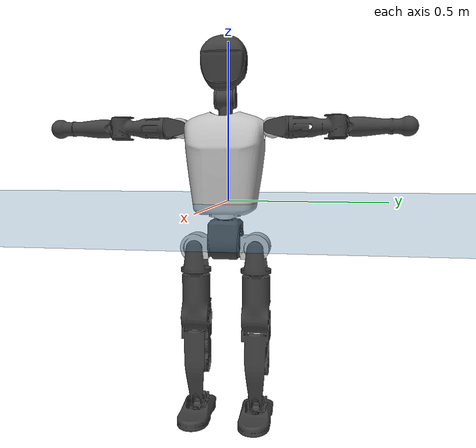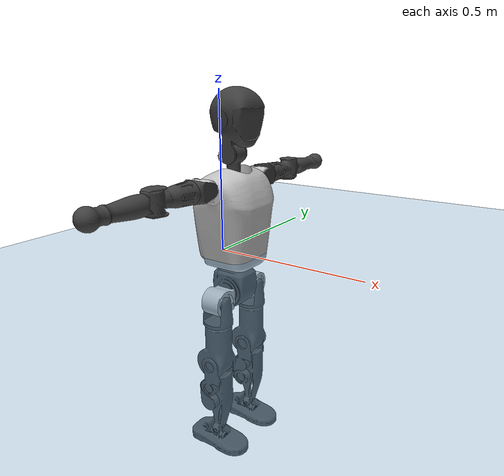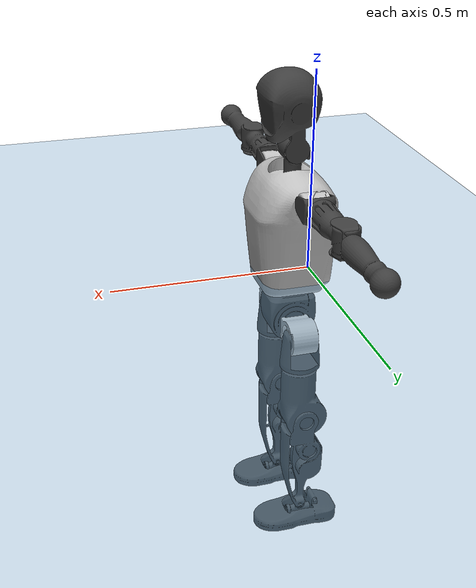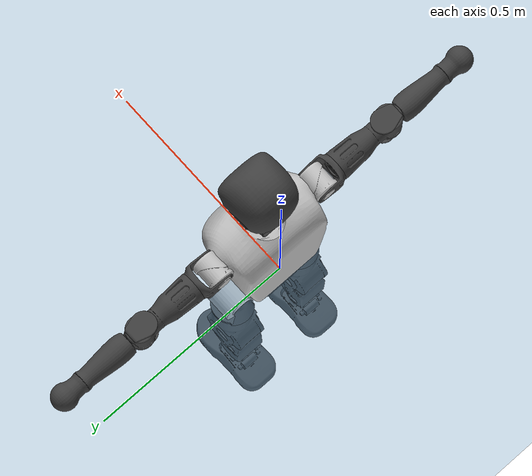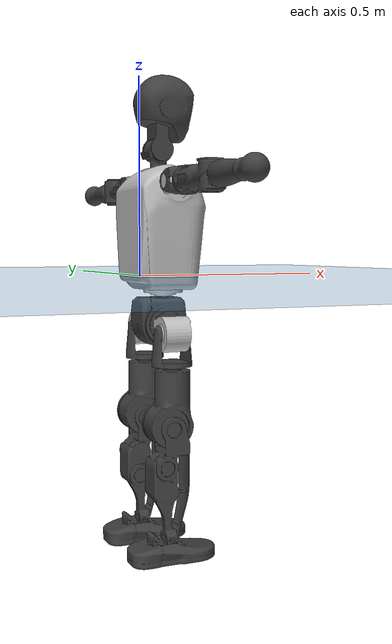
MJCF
<mujoco model="T1">
  <compiler angle="radian" assetdir="assets" balanceinertia="true" inertiafromgeom="false"/>

  <option timestep="0.005" density="1.2" viscosity="2e-05"/>

  <size nkey="1"/>

  <visual>
    <quality shadowsize="8192"/>
    <map shadowclip="0.5"/>
  </visual>

  <default>
    <default class="/">
      <joint armature="0.01" damping="0.01" frictionloss="0.1"/>
      <geom contype="0" conaffinity="0" group="1" solref="-1000 -80"/>
      <site size="0.01 0.005 0.005" group="5"/>
      <general forcelimited="true" biastype="affine" gainprm="25" biasprm="0 -25 -0.6"/>
      <default class="t1">
        <geom rgba="0.25 0.25 0.25 1"/>
        <default class="visual">
          <geom type="mesh" group="2"/>
        </default>
        <default class="collision">
          <geom group="3"/>
        </default>
        <default class="foot">
          <geom size="0.1115 0.05 0.015" type="box" condim="6" group="4" priority="1" solimp="0.015 1 0.015"/>
        </default>
        <default class="reward_collision_sphere">
          <geom group="5" rgba="1 0 0 1"/>
        </default>
      </default>
    </default>
  </default>

  <asset>
    <texture type="skybox" colorspace="auto" name="//unnamed_texture_0" builtin="gradient" rgb1="0.95 0.95 0.95" rgb2="0.95 0.95 0.95" width="100" height="600"/>
    <texture type="2d" colorspace="auto" name="texplane" builtin="checker" rgb1="0.345 0.575 0.748" rgb2="0.345 0.575 0.748" markrgb="1 1 1" width="512" height="512"/>
    <material name="MatPlane" class="/" texture="texplane" texuniform="true" texrepeat="2 2" specular="0.9"/>
    <mesh name="Trunk" class="/" file="Trunk.stl"/>
    <mesh name="H1" class="/" file="H1.stl"/>
    <mesh name="H2" class="/" file="H2.stl"/>
    <mesh name="AL1" class="/" file="AL1.stl"/>
    <mesh name="AL2" class="/" file="AL2.stl"/>
    <mesh name="AL3" class="/" file="AL3.stl"/>
    <mesh name="left_hand_link" class="/" file="left_hand_link.stl"/>
    <mesh name="AR1" class="/" file="AR1.stl"/>
    <mesh name="AR2" class="/" file="AR2.stl"/>
    <mesh name="AR3" class="/" file="AR3.stl"/>
    <mesh name="right_hand_link" class="/" file="right_hand_link.stl"/>
    <mesh name="Waist" class="/" file="Waist.stl"/>
    <mesh name="Hip_Pitch_Left" class="/" file="Hip_Pitch_Left.stl"/>
    <mesh name="Hip_Roll_Left" class="/" file="Hip_Roll_Left.stl"/>
    <mesh name="Hip_Yaw_Left" class="/" file="Hip_Yaw_Left.stl"/>
    <mesh name="Shank_Left" class="/" file="Shank_Left.stl"/>
    <mesh name="Ankle_Cross_Left" class="/" file="Ankle_Cross_Left.stl"/>
    <mesh name="left_foot_link" class="/" file="left_foot_link.stl"/>
    <mesh name="Hip_Pitch_Right" class="/" file="Hip_Pitch_Right.stl"/>
    <mesh name="Hip_Roll_Right" class="/" file="Hip_Roll_Right.stl"/>
    <mesh name="Hip_Yaw_Right" class="/" file="Hip_Yaw_Right.stl"/>
    <mesh name="Shank_Right" class="/" file="Shank_Right.stl"/>
    <mesh name="Ankle_Cross_Right" class="/" file="Ankle_Cross_Right.stl"/>
    <mesh name="right_foot_link" class="/" file="right_foot_link.stl"/>
  </asset>

  <worldbody>
    <geom name="floor" class="/" size="100 100 0.125" type="plane" group="0" material="MatPlane"/>
    <light name="toplight_shadow" class="/" pos="0 0 5" dir="0.0990148 0.0990148 -0.990148" type="directional" ambient="0.04 0.04 0.04" diffuse="0.55 0.55 0.55" specular="0.12 0.12 0.12"/>
    <light name="toplight_fill" class="/" pos="0 0 5" dir="0.0990148 0.0990148 -0.990148" type="directional" castshadow="false" ambient="0.04 0.04 0.04" diffuse="0.3 0.3 0.3" specular="0.08 0.08 0.08"/>
    <body name="trunk" childclass="t1" pos="0.000862722 -0.000560094 -0.000160894" quat="1 5.76309e-05 0.00035743 -8.54895e-05">
      <inertial pos="0.0435219 -0.000613811 0.10924" quat="0.999968 9.12361e-06 -0.00799334 0.000417584" mass="9.04639" diaginertia="0.0295271 0.0486586 0.0724631"/>
      <joint name="//unnamed_joint_0" type="free" armature="0" damping="0" frictionloss="0"/>
      <geom name="//unnamed_geom_1" class="visual" rgba="0.76 0.76 0.76 1" mesh="Trunk"/>
      <geom name="//unnamed_geom_2" class="collision" size="0.0688064 0.0917418 0.137613" pos="0.0477519 0 0.125702" type="box"/>
      <geom name="//unnamed_geom_3" class="reward_collision_sphere" size="0.105503" pos="0.0477519 0 0.104752"/>
      <geom name="//unnamed_geom_4" class="reward_collision_sphere" size="0.0137613" pos="0.0477519 0.0772542 0"/>
      <geom name="//unnamed_geom_5" class="reward_collision_sphere" size="0.0137613" pos="0.0477519 -0.0772542 0"/>
      <geom name="//unnamed_geom_6" class="reward_collision_sphere" size="0.0137613" pos="0.0477519 0.0972494 0.188553"/>
      <geom name="//unnamed_geom_7" class="reward_collision_sphere" size="0.0137613" pos="0.0477519 -0.0972494 0.188553"/>
      <site name="imu" pos="-0.000799208 0.00153675 -0.000945691" size="0.00917418"/>
      <camera name="track" pos="0 -1.81775 0" quat="0.707107 0.707107 0 0" mode="trackcom"/>
      <camera name="ego_camera" pos="0.0970955 0 0.439957" quat="-0.5 -0.5 0.5 0.5"/>
      <body name="H1" pos="0.0496412 0.000356966 0.254646" quat="1 5.14199e-05 -2.56515e-05 -3.39312e-06">
        <inertial pos="-0.0014914 -0.00233797 0.060008" quat="0.768709 -0.0146008 0.005477 0.639408" mass="0.344814" diaginertia="7.8485e-05 0.000139267 0.000190854"/>
        <joint name="AAHead_yaw" pos="0 0 0" axis="0.000266255 -0.000701226 1" range="-1.5523 1.56845" armature="0.0090899" damping="0.00889851" frictionloss="0.0995574"/>
        <geom name="//unnamed_geom_8" class="visual" mesh="H1"/>
        <body name="H2" pos="-0.00101373 -0.000167331 0.0641648" quat="1 -7.78365e-05 4.10732e-05 -1.19668e-05">
          <inertial pos="0.00566921 0.0011218 0.103587" quat="0.987826 0.110245 -0.0749723 -0.0801583" mass="0.48166" diaginertia="0.000653494 0.0011728 0.00218974"/>
          <joint name="Head_pitch" pos="0 0 0" axis="-0.0021168 -0.999995 -0.0022004" range="-1.22536 0.356908" armature="0.00861808" damping="0.00647196" frictionloss="0.0927047"/>
          <geom name="//unnamed_geom_9" class="visual" mesh="H2"/>
          <geom name="//unnamed_geom_10" class="collision" size="0.0733935" pos="0.00795865 0 0.115227"/>
          <geom name="//unnamed_geom_11" class="reward_collision_sphere" size="0.0825677" pos="0.0159173 0 0.104752"/>
        </body>
      </body>
      <body name="AL1" pos="0.0466042 0.0972745 0.229943" quat="1 1.83612e-05 0.000480746 1.11513e-05">
        <inertial pos="0.000178286 0.0405234 0.0002175" quat="0.500972 0.50213 -0.501764 0.495101" mass="0.409042" diaginertia="0.000437034 0.000795835 0.000372805"/>
        <joint name="Left_Shoulder_Pitch" pos="0 0 0" axis="-0.00245779 0.999995 -0.00177375" stiffness="2.91199e-05" range="-3.30106 1.20234" armature="0.00929319" damping="0.00758687" frictionloss="0.0894536"/>
        <geom name="//unnamed_geom_12" class="visual" rgba="0.76 0.76 0.76 1" mesh="AL1"/>
        <body name="AL2" pos="0.000768467 0.0434563 0.000986192" quat="1 2.80906e-05 -8.40065e-05 5.11999e-05">
          <inertial pos="0.00274679 0.0351837 -0.000162527" quat="0.488314 0.511322 -0.488042 0.511775" mass="0.123643" diaginertia="0.000128426 0.000215617 0.000222354"/>
          <joint name="Left_Shoulder_Roll" pos="0 0 0" axis="-0.999996 -0.0028364 -0.000671165" stiffness="0.000929944" range="-1.55217 1.72536" armature="0.00916942" damping="0.0043728" frictionloss="0.0895814"/>
          <geom name="//unnamed_geom_13" class="visual" mesh="AL2"/>
          <body name="AL3" pos="0.00113711 0.0549477 -0.000219277" quat="1 -3.91381e-06 1.84721e-05 -6.75563e-05">
            <inertial pos="-0.00168953 0.077574 -0.000186351" quat="0.706362 0.707847 -0.00120696 0.00194997" mass="0.78484" diaginertia="0.00406055 0.00783793 0.000784458"/>
            <joint name="Left_Elbow_Pitch" pos="0 0 0" axis="-0.000101984 -1 -1.16072e-05" range="-2.27448 2.26694" armature="0.00945146" damping="0.00944952" frictionloss="0.0900032"/>
            <geom name="//unnamed_geom_14" class="visual" mesh="AL3"/>
            <geom name="//unnamed_geom_15" class="collision" size="0.0275226 0.0688064" pos="0 0.0454437 0" quat="0.707105 0.707108 0 0" type="cylinder"/>
            <geom name="//unnamed_geom_16" class="reward_collision_sphere" size="0.0330271"/>
            <body name="left_hand_link" pos="0.00127398 0.133988 -0.000593664" quat="1 9.91525e-05 6.52189e-05 -0.000387125">
              <inertial pos="0.0001608 0.100175 -6.92677e-05" quat="0.710501 0.703692 -0.000138621 -0.00263594" mass="0.250534" diaginertia="0.00258273 0.0049866 0.000265565"/>
              <joint name="Left_Elbow_Yaw" pos="0 0 0" axis="-0.00197905 0.0049126 0.999986" range="-2.45509 0.0188296" armature="0.00898103" damping="0.0124754" frictionloss="0.0917743"/>
              <geom name="//unnamed_geom_17" class="visual" mesh="left_hand_link"/>
              <geom name="//unnamed_geom_18" class="collision" size="0.0275226 0.0802741" pos="0 0.118154 0" quat="0.707105 0.707108 0 0" type="cylinder"/>
              <geom name="//unnamed_geom_19" class="reward_collision_sphere" size="0.0458709"/>
              <geom name="//unnamed_geom_20" class="reward_collision_sphere" size="0.0321096" pos="0 0.0999761 0"/>
              <geom name="//unnamed_geom_21" class="reward_collision_sphere" size="0.0321096" pos="0 0.195408 0"/>
            </body>
          </body>
        </body>
      </body>
      <body name="AR1" pos="0.0444039 -0.0968396 0.230063" quat="1 3.3304e-05 0.000453177 -1.83091e-05">
        <inertial pos="-0.00133304 -0.0416892 0.00124447" quat="0.502986 0.494444 -0.505247 0.497248" mass="0.413837" diaginertia="0.000441161 0.000798668 0.000373614"/>
        <joint name="Right_Shoulder_Pitch" pos="0 0 0" axis="-0.0010065 -0.999992 0.00379404" range="-1.22479 3.30837" armature="0.00883863" damping="0.00574315" frictionloss="0.0919045"/>
        <geom name="//unnamed_geom_22" class="visual" rgba="0.76 0.76 0.76 1" mesh="AR1"/>
        <body name="AR2" pos="-0.000521144 -0.040937 0.000166682" quat="1 -0.000471002 0.000112391 0.000254105">
          <inertial pos="0.00376192 -0.0346829 0.00127051" quat="0.514059 0.484107 -0.512133 0.488982" mass="0.126796" diaginertia="0.00013118 0.000219382 0.000222727"/>
          <joint name="Right_Shoulder_Roll" pos="0 0 0" axis="-0.999995 -0.00190402 0.00257224" stiffness="0.00355264" range="-1.74133 1.5766" armature="0.00872251" damping="0.00532519" frictionloss="0.0893678"/>
          <geom name="//unnamed_geom_23" class="visual" mesh="AR2"/>
          <body name="AR3" pos="-0.0006504 -0.0556339 0.000480272" quat="1 -4.11997e-05 6.69088e-05 -3.85248e-05">
            <inertial pos="0.00121678 -0.0775496 0.000772038" quat="0.707462 0.706751 0.00015228 0.000704286" mass="0.791613" diaginertia="0.00407205 0.00798576 0.000794762"/>
            <joint name="Right_Elbow_Pitch" pos="0 0 0" axis="9.83638e-05 1 4.05853e-06" stiffness="0.00149941" range="-2.27658 2.27164" armature="0.00920591" damping="0.00855066" frictionloss="0.0995507"/>
            <geom name="//unnamed_geom_24" class="visual" mesh="AR3"/>
            <geom name="//unnamed_geom_25" class="collision" size="0.0275226 0.0688064" pos="0 -0.0454437 0" quat="0.707105 0.707108 0 0" type="cylinder"/>
            <geom name="//unnamed_geom_26" class="reward_collision_sphere" size="0.0330271"/>
            <body name="right_hand_link" pos="0.000106906 -0.132993 -0.00033019" quat="1 2.93978e-06 -1.65778e-06 9.00193e-06">
              <inertial pos="-0.000240357 -0.0999555 0.000451467" quat="0.705626 0.708583 -0.000917174 0.000400526" mass="0.256604" diaginertia="0.00264943 0.00513438 0.000279063"/>
              <joint name="Right_Elbow_Yaw" pos="0 0 0" axis="0.00445923 0.000852517 0.99999" range="0.00735708 2.43749" armature="0.00960101" damping="0.00726455" frictionloss="0.0878084"/>
              <geom name="//unnamed_geom_27" class="visual" mesh="right_hand_link"/>
              <geom name="//unnamed_geom_28" class="collision" size="0.0275226 0.0802741" pos="0 -0.118154 0" quat="0.707105 0.707108 0 0" type="cylinder"/>
              <geom name="//unnamed_geom_29" class="reward_collision_sphere" size="0.0458709"/>
              <geom name="//unnamed_geom_30" class="reward_collision_sphere" size="0.0321096" pos="0 -0.0999761 0"/>
              <geom name="//unnamed_geom_31" class="reward_collision_sphere" size="0.0321096" pos="0 -0.195408 0"/>
            </body>
          </body>
        </body>
      </body>
      <body name="Waist" pos="0.0490781 0.000125559 -0.121097" quat="1 -0.000360341 0.000450079 0.000494573">
        <inertial pos="0.000558308 -0.000776898 0.00829516" quat="0.982591 -6.63649e-05 -0.185781 -0.000283271" mass="1.98053" diaginertia="0.00172211 0.00332058 0.00601135"/>
        <joint name="Waist" pos="0 0 0" axis="-0.000601473 -0.00324915 0.999995" range="-1.56949 1.57123" armature="0.00915251" damping="0.00877317" frictionloss="0.0924462"/>
        <geom name="//unnamed_geom_32" class="visual" mesh="Waist"/>
        <body name="Hip_Pitch_Left" pos="0.00103482 0.0959 0.00100486" quat="1 0.000144935 -2.20456e-06 0.000104903">
          <inertial pos="0.00182692 -0.00692594 -0.0191353" quat="0.975022 0.221826 0.0112343 1.24787e-06" mass="0.783182" diaginertia="0.000564729 0.00089645 0.00157193"/>
          <joint name="Left_Hip_Pitch" pos="0 0 0" axis="-0.00198684 0.999992 -0.00344824" range="-1.81669 1.5668" armature="0.00877959" damping="0.00703057" frictionloss="0.0910283"/>
          <geom name="//unnamed_geom_33" class="visual" rgba="0.76 0.76 0.76 1" mesh="Hip_Pitch_Left"/>
          <body name="Hip_Roll_Left" pos="0.000129008 0.000761286 -0.0238824" quat="1 -9.0695e-05 -0.000273851 0.000133882">
            <inertial pos="0.000848206 -0.00148681 -0.0553221" quat="0.706828 -0.00570689 -0.00595095 0.707337" mass="0.297613" diaginertia="0.000553352 0.000928265 0.000664817"/>
            <joint name="Left_Hip_Roll" pos="0 0 0" axis="-0.999979 -0.0038057 0.0052667" range="-1.57491 0.18417" armature="0.00923297" damping="0.00125557" frictionloss="0.0916383"/>
            <geom name="//unnamed_geom_34" class="visual" mesh="Hip_Roll_Left"/>
            <geom name="//unnamed_geom_35" class="reward_collision_sphere" size="0.050458"/>
            <body name="Hip_Yaw_Left" pos="-0.000749676 0.000444219 -0.0867545" quat="1 0.00024922 -0.000152088 -0.000204834">
              <inertial pos="-0.00496346 -0.000531921 -0.0933745" quat="0.695453 -0.0345186 -0.0292749 0.717145" mass="1.68148" diaginertia="0.00824202 0.0153753 0.00321686"/>
              <joint name="Left_Hip_Yaw" pos="0 0 0" axis="0.000146724 0.000384011 -1" range="-1.03611 0.995555" armature="0.0090839" damping="0.00766459" frictionloss="0.0927076"/>
              <geom name="//unnamed_geom_36" class="visual" mesh="Hip_Yaw_Left"/>
              <geom name="//unnamed_geom_37" class="collision" size="0.0458709 0.0733935" type="cylinder"/>
              <body name="Shank_Left" pos="-0.0120852 -3.47749e-05 -0.143677" quat="1 -1.17004e-05 6.70767e-05 -1.45501e-05">
                <inertial pos="-0.00468322 0.00032365 -0.130293" quat="0.997702 0.00323448 -0.0261117 0.0624351" mass="1.34214" diaginertia="0.0110355 0.0210773 0.0023454"/>
                <joint name="Left_Knee_Pitch" pos="0 0 0" axis="-0.003567 0.999982 0.00480863" range="-0.00221245 2.35262" armature="0.00898113" damping="0.00925142" frictionloss="0.0923357"/>
                <geom name="//unnamed_geom_38" class="visual" mesh="Shank_Left"/>
                <geom name="//unnamed_geom_39" class="collision" size="0.0458709 0.0688064" pos="0 0 -0.125702" type="cylinder"/>
                <geom name="//unnamed_geom_40" class="reward_collision_sphere" size="0.0596322"/>
                <body name="Ankle_Cross_Left" pos="0.000163098 -0.000302835 -0.292341" quat="1 0.000127141 -4.57311e-05 0.000496739">
                  <inertial pos="-0.00450267 0.000476268 -0.00929723" quat="0.443529 0.551288 0.549839 0.443893" mass="0.056855" diaginertia="9.37509e-06 1.59585e-05 1.41791e-05"/>
                  <joint name="Left_Ankle_Pitch" pos="0 0 0" axis="-0.00209628 0.999998 -0.000230459" range="-0.867925 0.347771" armature="0.00991555" damping="0.0114429" frictionloss="0.0910561"/>
                  <geom name="//unnamed_geom_41" class="visual" mesh="Ankle_Cross_Left"/>
                  <body name="left_foot_link" pos="0.00043975 9.40959e-06 -0.0121955" quat="1 -0.000795205 8.46565e-05 -0.00015978">
                    <inertial pos="-9.05718e-05 0.000978466 -0.0100254" quat="-0.000417141 0.619037 0.00403699 0.785351" mass="0.536286" diaginertia="0.000887234 0.00149256 0.0027925"/>
                    <joint name="Left_Ankle_Roll" pos="0 0 0" axis="-0.999942 0.000236502 -0.010794" range="-0.448267 0.428988" armature="0.00927805" damping="0.00657879" frictionloss="0.0916409"/>
                    <geom name="//unnamed_geom_42" class="visual" mesh="left_foot_link"/>
                    <geom name="left_foot" class="foot" size="0.103725 0.0456072 0.013632" pos="0.00795865 0 -0.0157128"/>
                    <geom name="//unnamed_geom_44" class="reward_collision_sphere" size="0.0477058" pos="0.00795865 0 -0.0157128"/>
                    <geom name="//unnamed_geom_45" class="reward_collision_sphere" size="0.0275226" pos="0.0756071 -0.0209041 -0.0157128"/>
                    <geom name="//unnamed_geom_46" class="reward_collision_sphere" size="0.0275226" pos="-0.0557105 -0.0209041 -0.0157128"/>
                    <site name="left_foot" class="foot" pos="0.00795865 0 -0.0157128" size="0.00917418"/>
                  </body>
                </body>
              </body>
            </body>
          </body>
        </body>
        <body name="Hip_Pitch_Right" pos="0.00134948 -0.0955205 -0.000975796" quat="1 4.61433e-05 -6.99316e-05 1.13714e-05">
          <inertial pos="-0.000815071 0.00613836 -0.0181668" quat="0.973198 -0.229393 0.0154623 -0.00501782" mass="0.785966" diaginertia="0.000574892 0.000905354 0.00155731"/>
          <joint name="Right_Hip_Pitch" pos="0 0 0" axis="-0.000697296 -1 0.000284731" range="-1.57183 1.81091" armature="0.00955082" damping="0.000878932" frictionloss="0.0876758"/>
          <geom name="//unnamed_geom_47" class="visual" rgba="0.76 0.76 0.76 1" mesh="Hip_Pitch_Right"/>
          <body name="Hip_Roll_Right" pos="-0.000508732 0.000387007 -0.0220793" quat="1 0.000108544 8.16386e-05 -0.000106652">
            <inertial pos="0.00157122 -0.000680985 -0.0564866" quat="0.706986 -0.0070594 -0.00369601 0.707183" mass="0.29199" diaginertia="0.000561679 0.000939726 0.000647173"/>
            <joint name="Right_Hip_Roll" pos="0 0 0" axis="-0.999996 -0.000691714 -0.00291223" range="-0.211556 1.56581" armature="0.00927259" damping="0.00468507" frictionloss="0.089814"/>
            <geom name="//unnamed_geom_48" class="visual" mesh="Hip_Roll_Right"/>
            <geom name="//unnamed_geom_49" class="reward_collision_sphere" size="0.050458"/>
            <body name="Hip_Yaw_Right" pos="-0.0010336 -0.00047344 -0.0865594" quat="1 1.52586e-06 -1.22212e-06 9.95012e-07">
              <inertial pos="-0.00580863 -0.000269882 -0.0942766" quat="0.714287 -0.0322778 -0.0322155 0.698365" mass="1.67071" diaginertia="0.00833551 0.0156724 0.00332173"/>
              <joint name="Right_Hip_Yaw" pos="0 0 0" axis="-0.00256737 0.00146213 -0.999996" stiffness="0.00392184" range="-1.00063 1.00376" armature="0.00938904" damping="0.0161291" frictionloss="0.0948452"/>
              <geom name="//unnamed_geom_50" class="visual" mesh="Hip_Yaw_Right"/>
              <geom name="//unnamed_geom_51" class="collision" size="0.0458709 0.0733935" type="cylinder"/>
              <body name="Shank_Right" pos="-0.0115802 -0.000213944 -0.141797" quat="1 -0.000241985 -8.33028e-05 2.75012e-05">
                <inertial pos="-0.00531893 -0.000470932 -0.128751" quat="0.999236 -0.000514208 -0.023513 -0.0312031" mass="1.39639" diaginertia="0.0113766 0.0217353 0.00246277"/>
                <joint name="Right_Knee_Pitch" pos="0 0 0" axis="0.00292009 -0.999995 -0.00110676" range="-2.35844 -0.00880437" armature="0.00922723" damping="0.00464241" frictionloss="0.0893674"/>
                <geom name="//unnamed_geom_52" class="visual" mesh="Shank_Right"/>
                <geom name="//unnamed_geom_53" class="collision" size="0.0458709 0.0688064" pos="0 0 -0.125702" type="cylinder"/>
                <geom name="//unnamed_geom_54" class="reward_collision_sphere" size="0.0596322"/>
                <body name="Ankle_Cross_Right" pos="0.000969009 -0.000798523 -0.293488" quat="1 -6.36804e-06 3.58968e-05 -1.89226e-05">
                  <inertial pos="-0.00259473 -0.000635484 -0.0083135" quat="0.443356 0.551253 0.55074 0.442992" mass="0.0566967" diaginertia="9.3316e-06 1.59861e-05 1.44135e-05"/>
                  <joint name="Right_Ankle_Pitch" pos="0 0 0" axis="-0.00231871 -0.999997 0.000552421" range="-0.363702 0.870443" armature="0.00917106" damping="0.00257051" frictionloss="0.0927101"/>
                  <geom name="//unnamed_geom_55" class="visual" mesh="Ankle_Cross_Right"/>
                  <body name="right_foot_link" pos="-0.000685997 -0.000589206 -0.0100068" quat="1 -5.02287e-06 1.05802e-05 -3.57093e-06">
                    <inertial pos="-4.12912e-05 0.000360417 -0.0111109" quat="-0.00193124 0.621939 -0.000768125 0.783063" mass="0.523578" diaginertia="0.000847547 0.00145056 0.00265243"/>
                    <joint name="Right_Ankle_Roll" pos="0 0 0" axis="-0.999993 0.000814214 0.00372902" range="-0.44304 0.462153" armature="0.00831715" damping="0" frictionloss="0.0903068"/>
                    <geom name="//unnamed_geom_56" class="visual" mesh="right_foot_link"/>
                    <geom name="right_foot" class="foot" size="0.0988042 0.0458218 0.0140658" pos="0.00795865 0 -0.0157128"/>
                    <geom name="//unnamed_geom_58" class="reward_collision_sphere" size="0.0366967"/>
                    <geom name="//unnamed_geom_59" class="reward_collision_sphere" size="0.0275226" pos="0.00795865 0 -0.0157128"/>
                    <geom name="//unnamed_geom_60" class="reward_collision_sphere" size="0.0275226" pos="0.0756071 0.0209041 -0.0157128"/>
                    <geom name="//unnamed_geom_61" class="reward_collision_sphere" size="0.0275226" pos="-0.0557105 0.0209041 -0.0157128"/>
                    <site name="right_foot" class="foot" pos="0.00795865 0 -0.0157128" size="0.00917418"/>
                  </body>
                </body>
              </body>
            </body>
          </body>
        </body>
      </body>
    </body>
  </worldbody>

  <contact>
    <pair class="/" geom1="floor" geom2="left_foot" name="//unnamed_contact_0"/>
    <pair class="/" geom1="floor" geom2="right_foot" name="//unnamed_contact_1"/>
  </contact>

  <actuator>
    <general name="AAHead_yaw" class="/" joint="AAHead_yaw" forcerange="-6.37733 6.37733" gainprm="23.4588" biasprm="0 -23.4588 -0.526556"/>
    <general name="Head_pitch" class="/" joint="Head_pitch" forcerange="-6.34553 6.34553" gainprm="23.4588" biasprm="0 -23.4588 -0.526556"/>
    <general name="Left_Shoulder_Pitch" class="/" joint="Left_Shoulder_Pitch" forcerange="-15.3898 15.3898" gainprm="23.4588" biasprm="0 -23.4588 -0.526556"/>
    <general name="Left_Shoulder_Roll" class="/" joint="Left_Shoulder_Roll" forcerange="-15.9753 15.9753" gainprm="23.4588" biasprm="0 -23.4588 -0.526556"/>
    <general name="Left_Elbow_Pitch" class="/" joint="Left_Elbow_Pitch" forcerange="-16.2537 16.2537" gainprm="23.4588" biasprm="0 -23.4588 -0.526556"/>
    <general name="Left_Elbow_Yaw" class="/" joint="Left_Elbow_Yaw" forcerange="-16.6124 16.6124" gainprm="23.4588" biasprm="0 -23.4588 -0.526556"/>
    <general name="Right_Shoulder_Pitch" class="/" joint="Right_Shoulder_Pitch" forcerange="-16.44 16.44" gainprm="23.4588" biasprm="0 -23.4588 -0.526556"/>
    <general name="Right_Shoulder_Roll" class="/" joint="Right_Shoulder_Roll" forcerange="-16.3424 16.3424" gainprm="23.4588" biasprm="0 -23.4588 -0.526556"/>
    <general name="Right_Elbow_Pitch" class="/" joint="Right_Elbow_Pitch" forcerange="-16.7687 16.7687" gainprm="23.4588" biasprm="0 -23.4588 -0.526556"/>
    <general name="Right_Elbow_Yaw" class="/" joint="Right_Elbow_Yaw" forcerange="-16.63 16.63" gainprm="23.4588" biasprm="0 -23.4588 -0.526556"/>
    <general name="Waist" class="/" joint="Waist" forcerange="-27.4101 27.4101" gainprm="23.4588" biasprm="0 -23.4588 -0.526556"/>
    <general name="Left_Hip_Pitch" class="/" joint="Left_Hip_Pitch" forcerange="-42.0169 42.0169" gainprm="23.4588" biasprm="0 -23.4588 -0.526556"/>
    <general name="Left_Hip_Roll" class="/" joint="Left_Hip_Roll" forcerange="-26.6637 26.6637" gainprm="23.4588" biasprm="0 -23.4588 -0.526556"/>
    <general name="Left_Hip_Yaw" class="/" joint="Left_Hip_Yaw" forcerange="-28.4106 28.4106" gainprm="23.4588" biasprm="0 -23.4588 -0.526556"/>
    <general name="Left_Knee_Pitch" class="/" joint="Left_Knee_Pitch" forcerange="-55.1541 55.1541" gainprm="23.4588" biasprm="0 -23.4588 -0.526556"/>
    <general name="Left_Ankle_Pitch" class="/" joint="Left_Ankle_Pitch" forcerange="-18.3864 18.3864" gainprm="23.4588" biasprm="0 -23.4588 -0.526556"/>
    <general name="Left_Ankle_Roll" class="/" joint="Left_Ankle_Roll" forcerange="-13.4619 13.4619" gainprm="23.4588" biasprm="0 -23.4588 -0.526556"/>
    <general name="Right_Hip_Pitch" class="/" joint="Right_Hip_Pitch" forcerange="-42.4978 42.4978" gainprm="23.4588" biasprm="0 -23.4588 -0.526556"/>
    <general name="Right_Hip_Roll" class="/" joint="Right_Hip_Roll" forcerange="-29.1069 29.1069" gainprm="23.4588" biasprm="0 -23.4588 -0.526556"/>
    <general name="Right_Hip_Yaw" class="/" joint="Right_Hip_Yaw" forcerange="-27.4117 27.4117" gainprm="23.4588" biasprm="0 -23.4588 -0.526556"/>
    <general name="Right_Knee_Pitch" class="/" joint="Right_Knee_Pitch" forcerange="-53.0675 53.0675" gainprm="23.4588" biasprm="0 -23.4588 -0.526556"/>
    <general name="Right_Ankle_Pitch" class="/" joint="Right_Ankle_Pitch" forcerange="-17.348 17.348" gainprm="23.4588" biasprm="0 -23.4588 -0.526556"/>
    <general name="Right_Ankle_Roll" class="/" joint="Right_Ankle_Roll" forcerange="-13.8536 13.8536" gainprm="23.4588" biasprm="0 -23.4588 -0.526556"/>
  </actuator>

  <sensor>
    <gyro site="imu" name="imu_angular_velocity"/>
    <velocimeter site="imu" name="imu_linear_velocity"/>
    <framelinvel objtype="site" objname="left_foot" name="left_foot_global_linear_velocity"/>
    <framelinvel objtype="site" objname="right_foot" name="right_foot_global_linear_velocity"/>
  </sensor>

  <keyframe>
    <key name="home" qpos="0 0 0.6385 1 0 0 0 0 0 0 1.4 0 -0.4 0 -1.4 0 0.4 0 -0.4 0 0 0.8 -0.4 0 0.4 0 0 -0.8 0.4 0"/>
  </keyframe>
</mujoco>
